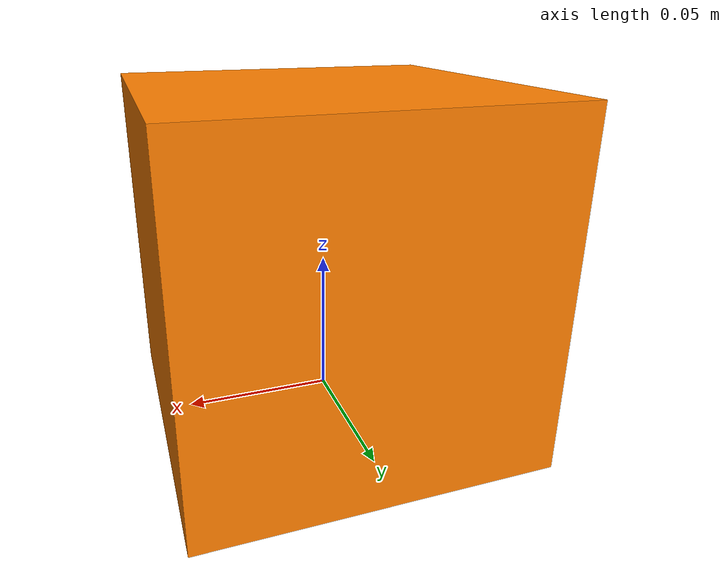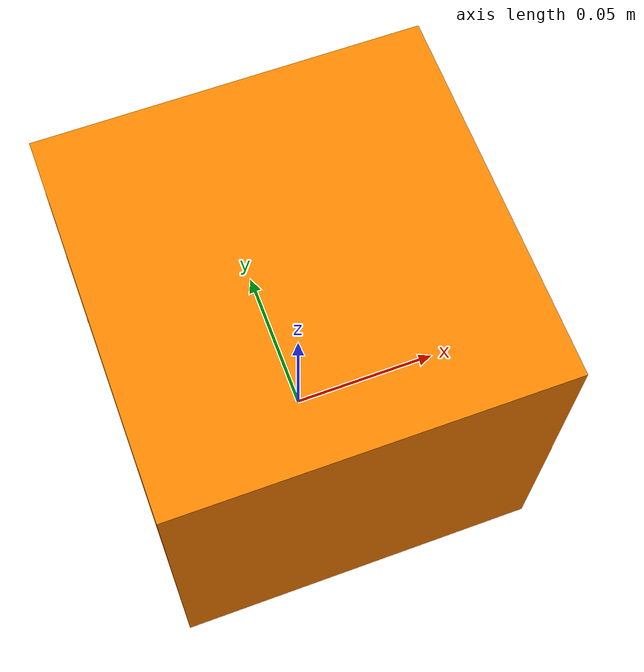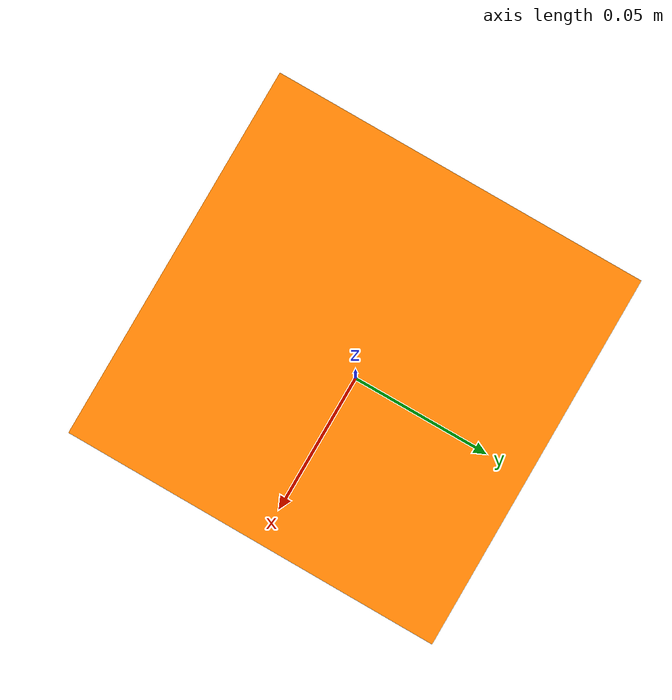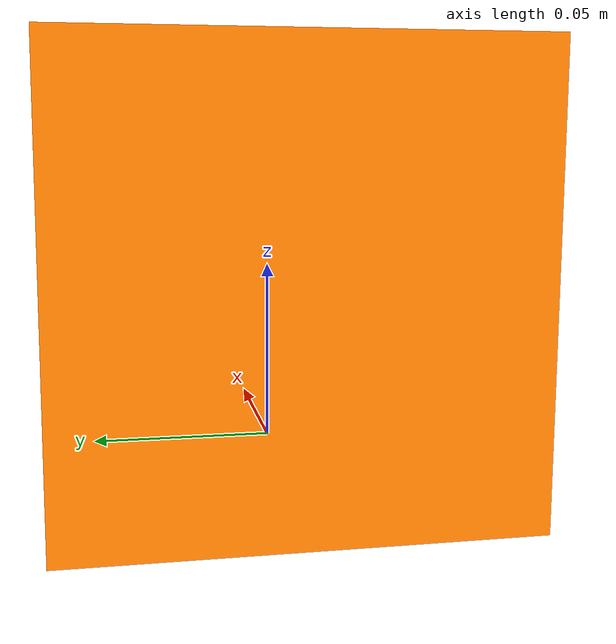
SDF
<?xml version="1.0"?>
<sdf version="1.6">
  <model name="payload_box">
    <static>false</static>
    <link name="link">
      <gravity>true</gravity>
      <pose>0 0 0.05 0 0 0</pose>

      <inertial>
        <mass>0.2</mass>
        <inertia>
          <ixx>0.001</ixx><iyy>0.001</iyy><izz>0.001</izz>
        </inertia>
      </inertial>

      <collision name="collision">
        <geometry>
          <box><size>0.12 0.12 0.12</size></box>
        </geometry>
      </collision>

      <visual name="visual">
        <geometry>
          <box><size>0.12 0.12 0.12</size></box>
        </geometry>
        <material>
          <ambient>1 0.5 0 1</ambient>
          <diffuse>1 0.5 0 1</diffuse>
        </material>
      </visual>
    </link>
  </model>
</sdf>
